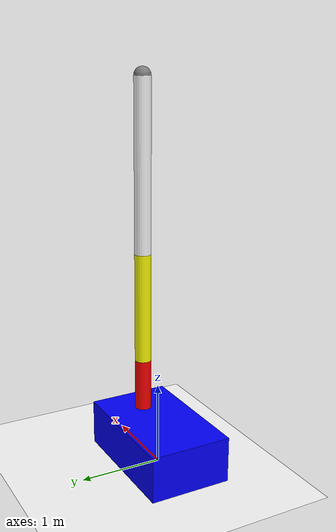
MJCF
<mujoco>
    <compiler angle="degree"/>
    <option gravity="0 0 0"/>
    <worldbody>
        <!--Light-->
        <light diffuse=".5 .5 .5" pos="0 0 1000" dir="0 0 -1"/>

        <!--Work plane -->
        <geom type="plane" size="100 100 .1" rgba="1 1 1 1"/>

        <!-- Body -->
        <body pos="0 0 .28" name="body_base">
            <geom type="box" size=".8 .5 .28" rgba="0 0 1 1" name="base"/>
            <joint name="fix" type="free"/>

            <body pos=".39 0 .5975" name="body_0">
                <geom type="cylinder" size=".1 .3175 0" rgba="1 0 0 1" name="link_0"/>
                <joint name="joint_link_0" type="hinge" pos="0 0 -.3175" axis="0 0 -1" limited="true" range="-90 90"/>
                <camera name="camera" pos="0 0.25 0" mode="fixed" euler="0 -90 -90"/>

                <body pos="0 0 .9925" name="body_1">
                    <geom type="cylinder" size=".1 .675 0" rgba="1 1 0 1" name="link_1"/>
                    <joint name="joint_link_1" type="hinge" pos="0 0 -.675" axis="0 1 0" limited="true" range="-50 90"/>

                    <body pos="0 0 1.695" name="body_2">
                        <geom type="cylinder" size=".1 1.02 0" rgba="1 1 1 1" name="link_2"/>
                        <joint name="joint_link_2" type="hinge" pos="0 0 -1.02" axis="0 1 0" limited="true" range="0 180"/>
                        <site name="pos_arm" pos="0 0 1.02" size=".1"/>
                    </body>
                </body>
            </body>
        </body>

  </worldbody>
</mujoco>
